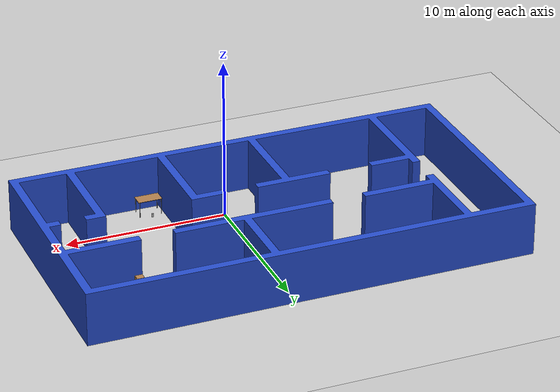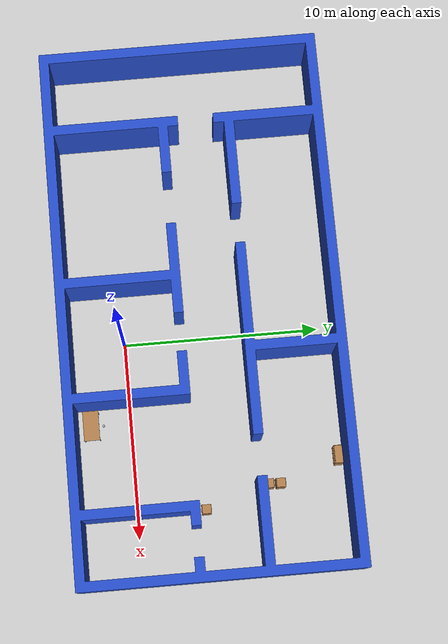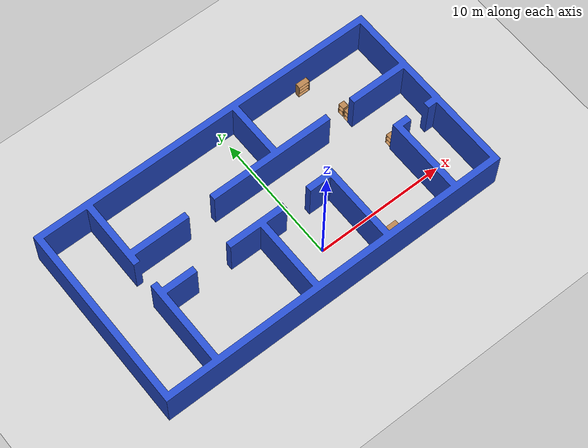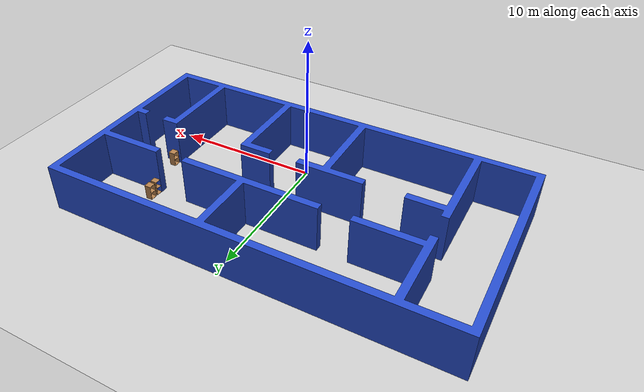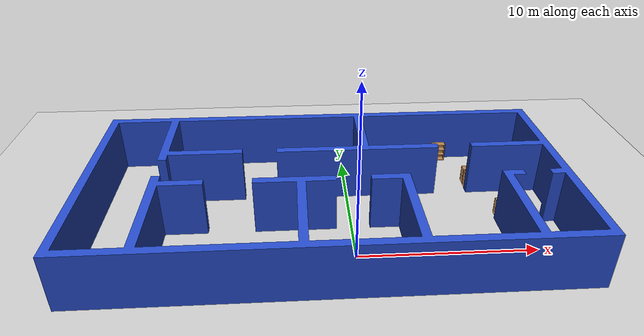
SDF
<sdf version="1.7">
 <world name="default">
  <model name="ground_plane">
   <static>1</static>
   <link name="link">
    <collision name="collision">
     <geometry><plane><normal>0 0 1</normal><size>100 100</size></plane></geometry>
     <surface>
      <contact><collide_bitmask>65535</collide_bitmask></contact>
      <friction><ode><mu>100</mu><mu2>50</mu2></ode></friction>
     </surface>
    </collision>
    <visual name="visual">
     <cast_shadows>0</cast_shadows>
     <geometry><plane><normal>0 0 1</normal><size>100 100</size></plane></geometry>
     <material>
      <script><uri>file://media/materials/scripts/gazebo.material</uri><name>Gazebo/Grey</name></script>
     </material>
    </visual>
   </link>
  </model>
  <model name="office_better">
   <static>1</static>
   <frame name="object_frame"><pose relative_to="/world">0 0 0 0 -0 0</pose></frame>
   <pose relative_to="/world">32.0924 31.9937 31.8978 0 -0 0</pose>
   <link name="link">
    <pose>-32 -32 -32 0 -0 0</pose>
    <inertial>
     <mass>239.5</mass>
     <inertia>
      <ixx>6464.83</ixx>
      <ixy>225.633</ixy>
      <ixz>0</ixz>
      <iyy>19267</iyy>
      <iyz>0</iyz>
      <izz>25283.1</izz>
     </inertia>
     <pose relative_to="link_inertia_frame">-1.35 3.89 1.68 0 -0 0</pose>
     <frame name="link_inertia_frame"><pose relative_to="link_frame">0 0 0 0 -0 0</pose></frame>
    </inertial>
    <collision name="collision">
     <max_contacts>20</max_contacts>
     <pose relative_to="collision_frame">0 0 0 0 -0 0</pose>
     <geometry>
      <mesh>
       <uri>/home/student/catkin_ws/src/JJCAR-Rescuebot/rescue_bot/worlds/./model/office_better/meshes/mesh.stl</uri>
       <scale>1 1 1</scale>
      </mesh>
     </geometry>
     <frame name="collision_frame"><pose relative_to="link_frame">0 0 0 0 -0 0</pose></frame>
    </collision>
    <visual name="visual">
     <pose relative_to="visual_frame">0 0 0 0 -0 0</pose>
     <material>
      <script><uri>file://media/materials/scripts/gazebo.material</uri><name>Gazebo/Blue</name></script>
      <shader type="vertex"><normal_map>__default__</normal_map></shader>
      <lighting>1</lighting>
      <ambient>0.15 0.75 0.35 1</ambient>
      <diffuse>0.1 0.95 0.25 1</diffuse>
      <specular>0.01 0.01 0.01 1</specular>
      <emissive>0 0 0 1</emissive>
     </material>
     <geometry>
      <mesh>
       <uri>/home/student/catkin_ws/src/JJCAR-Rescuebot/rescue_bot/worlds/./model/office_better/meshes/mesh.stl</uri>
       <scale>1 1 1</scale>
      </mesh>
     </geometry>
     <frame name="visual_frame"><pose relative_to="link_frame">0 0 0 0 -0 0</pose></frame>
    </visual>
    <frame name="link_frame"><pose relative_to="object_frame">0 0 0 0 -0 0</pose></frame>
   </link>
  </model>
  <model name="cabinet_2">
   <static>1</static>
   <link name="cabinet_bottom_plate">
    <inertial>
     <pose>0 0 -1 0 -0 0</pose>
     <inertia><ixx>2.05</ixx><ixy>0</ixy><ixz>0</ixz><iyy>2.05</iyy><iyz>0</iyz><izz>2.05</izz></inertia>
     <mass>25</mass>
    </inertial>
    <collision name="cabinet_bottom_plate_geom">
     <pose>0 0 0.01 0 -0 0</pose>
     <geometry><box><size>0.45 0.45 0.02</size></box></geometry>
    </collision>
    <visual name="cabinet_bottom_plate_geom_visual">
     <pose>0 0 0.01 0 -0 0</pose>
     <geometry><box><size>0.45 0.45 0.02</size></box></geometry>
     <material>
      <script><uri>file://media/materials/scripts/gazebo.material</uri><name>Gazebo/Wood</name></script>
     </material>
    </visual>
    <collision name="cabinet_bottom_plate_geom_cabinet_back_plate">
     <pose>0.235 0 0.51 0 -0 0</pose>
     <geometry><box><size>0.02 0.45 1.02</size></box></geometry>
    </collision>
    <visual name="cabinet_bottom_plate_geom_cabinet_back_plate_visual">
     <pose>0.235 0 0.51 0 -0 0</pose>
     <geometry><box><size>0.02 0.45 1.02</size></box></geometry>
     <material>
      <script><uri>file://media/materials/scripts/gazebo.material</uri><name>Gazebo/Wood</name></script>
     </material>
    </visual>
    <collision name="cabinet_bottom_plate_geom_cabinet_left_plate">
     <pose>0 0.235 0.51 0 -0 0</pose>
     <geometry><box><size>0.45 0.02 1.02</size></box></geometry>
    </collision>
    <visual name="cabinet_bottom_plate_geom_cabinet_left_plate_visual">
     <pose>0 0.235 0.51 0 -0 0</pose>
     <geometry><box><size>0.45 0.02 1.02</size></box></geometry>
     <material>
      <script><uri>file://media/materials/scripts/gazebo.material</uri><name>Gazebo/Wood</name></script>
     </material>
    </visual>
    <collision name="cabinet_bottom_plate_geom_cabinet_middle_plate">
     <pose>0 0 0.51 0 -0 0</pose>
     <geometry><box><size>0.45 0.45 0.02</size></box></geometry>
    </collision>
    <visual name="cabinet_bottom_plate_geom_cabinet_middle_plate_visual">
     <pose>0 0 0.51 0 -0 0</pose>
     <geometry><box><size>0.45 0.45 0.02</size></box></geometry>
     <material>
      <script><uri>file://media/materials/scripts/gazebo.material</uri><name>Gazebo/Wood</name></script>
     </material>
    </visual>
    <collision name="cabinet_bottom_plate_geom_cabinet_right_plate">
     <pose>0 -0.235 0.51 0 -0 0</pose>
     <geometry><box><size>0.45 0.02 1.02</size></box></geometry>
    </collision>
    <visual name="cabinet_bottom_plate_geom_cabinet_right_plate_visual">
     <pose>0 -0.235 0.51 0 -0 0</pose>
     <geometry><box><size>0.45 0.02 1.02</size></box></geometry>
     <material>
      <script><uri>file://media/materials/scripts/gazebo.material</uri><name>Gazebo/Wood</name></script>
     </material>
    </visual>
    <collision name="cabinet_bottom_plate_geom_cabinet_top_plate">
     <pose>0 0 1.01 0 -0 0</pose>
     <geometry><box><size>0.45 0.45 0.02</size></box></geometry>
    </collision>
    <visual name="cabinet_bottom_plate_geom_cabinet_top_plate_visual">
     <pose>0 0 1.01 0 -0 0</pose>
     <geometry><box><size>0.45 0.45 0.02</size></box></geometry>
     <material>
      <script><uri>file://media/materials/scripts/gazebo.material</uri><name>Gazebo/Wood</name></script>
     </material>
    </visual>
   </link>
   <pose>8.81846 3.4909 0 0 -0 0</pose>
  </model>
  <model name="cabinet_3">
   <static>1</static>
   <link name="cabinet_bottom_plate">
    <inertial>
     <pose>0 0 -1 0 -0 0</pose>
     <inertia><ixx>2.05</ixx><ixy>0</ixy><ixz>0</ixz><iyy>2.05</iyy><iyz>0</iyz><izz>2.05</izz></inertia>
     <mass>25</mass>
    </inertial>
    <collision name="cabinet_bottom_plate_geom">
     <pose>0 0 0.01 0 -0 0</pose>
     <geometry><box><size>0.45 0.45 0.02</size></box></geometry>
    </collision>
    <visual name="cabinet_bottom_plate_geom_visual">
     <pose>0 0 0.01 0 -0 0</pose>
     <geometry><box><size>0.45 0.45 0.02</size></box></geometry>
     <material>
      <script><uri>file://media/materials/scripts/gazebo.material</uri><name>Gazebo/Wood</name></script>
     </material>
    </visual>
    <collision name="cabinet_bottom_plate_geom_cabinet_back_plate">
     <pose>0.235 0 0.51 0 -0 0</pose>
     <geometry><box><size>0.02 0.45 1.02</size></box></geometry>
    </collision>
    <visual name="cabinet_bottom_plate_geom_cabinet_back_plate_visual">
     <pose>0.235 0 0.51 0 -0 0</pose>
     <geometry><box><size>0.02 0.45 1.02</size></box></geometry>
     <material>
      <script><uri>file://media/materials/scripts/gazebo.material</uri><name>Gazebo/Wood</name></script>
     </material>
    </visual>
    <collision name="cabinet_bottom_plate_geom_cabinet_left_plate">
     <pose>0 0.235 0.51 0 -0 0</pose>
     <geometry><box><size>0.45 0.02 1.02</size></box></geometry>
    </collision>
    <visual name="cabinet_bottom_plate_geom_cabinet_left_plate_visual">
     <pose>0 0.235 0.51 0 -0 0</pose>
     <geometry><box><size>0.45 0.02 1.02</size></box></geometry>
     <material>
      <script><uri>file://media/materials/scripts/gazebo.material</uri><name>Gazebo/Wood</name></script>
     </material>
    </visual>
    <collision name="cabinet_bottom_plate_geom_cabinet_middle_plate">
     <pose>0 0 0.51 0 -0 0</pose>
     <geometry><box><size>0.45 0.45 0.02</size></box></geometry>
    </collision>
    <visual name="cabinet_bottom_plate_geom_cabinet_middle_plate_visual">
     <pose>0 0 0.51 0 -0 0</pose>
     <geometry><box><size>0.45 0.45 0.02</size></box></geometry>
     <material>
      <script><uri>file://media/materials/scripts/gazebo.material</uri><name>Gazebo/Wood</name></script>
     </material>
    </visual>
    <collision name="cabinet_bottom_plate_geom_cabinet_right_plate">
     <pose>0 -0.235 0.51 0 -0 0</pose>
     <geometry><box><size>0.45 0.02 1.02</size></box></geometry>
    </collision>
    <visual name="cabinet_bottom_plate_geom_cabinet_right_plate_visual">
     <pose>0 -0.235 0.51 0 -0 0</pose>
     <geometry><box><size>0.45 0.02 1.02</size></box></geometry>
     <material>
      <script><uri>file://media/materials/scripts/gazebo.material</uri><name>Gazebo/Wood</name></script>
     </material>
    </visual>
    <collision name="cabinet_bottom_plate_geom_cabinet_top_plate">
     <pose>0 0 1.01 0 -0 0</pose>
     <geometry><box><size>0.45 0.45 0.02</size></box></geometry>
    </collision>
    <visual name="cabinet_bottom_plate_geom_cabinet_top_plate_visual">
     <pose>0 0 1.01 0 -0 0</pose>
     <geometry><box><size>0.45 0.45 0.02</size></box></geometry>
     <material>
      <script><uri>file://media/materials/scripts/gazebo.material</uri><name>Gazebo/Wood</name></script>
     </material>
    </visual>
   </link>
   <pose>7.79963 6.74827 0 0 -0 0</pose>
  </model>
  <model name="cabinet_4">
   <static>1</static>
   <link name="cabinet_bottom_plate">
    <inertial>
     <pose>0 0 -1 0 -0 0</pose>
     <inertia><ixx>2.05</ixx><ixy>0</ixy><ixz>0</ixz><iyy>2.05</iyy><iyz>0</iyz><izz>2.05</izz></inertia>
     <mass>25</mass>
    </inertial>
    <collision name="cabinet_bottom_plate_geom">
     <pose>0 0 0.01 0 -0 0</pose>
     <geometry><box><size>0.45 0.45 0.02</size></box></geometry>
    </collision>
    <visual name="cabinet_bottom_plate_geom_visual">
     <pose>0 0 0.01 0 -0 0</pose>
     <geometry><box><size>0.45 0.45 0.02</size></box></geometry>
     <material>
      <script><uri>file://media/materials/scripts/gazebo.material</uri><name>Gazebo/Wood</name></script>
     </material>
    </visual>
    <collision name="cabinet_bottom_plate_geom_cabinet_back_plate">
     <pose>0.235 0 0.51 0 -0 0</pose>
     <geometry><box><size>0.02 0.45 1.02</size></box></geometry>
    </collision>
    <visual name="cabinet_bottom_plate_geom_cabinet_back_plate_visual">
     <pose>0.235 0 0.51 0 -0 0</pose>
     <geometry><box><size>0.02 0.45 1.02</size></box></geometry>
     <material>
      <script><uri>file://media/materials/scripts/gazebo.material</uri><name>Gazebo/Wood</name></script>
     </material>
    </visual>
    <collision name="cabinet_bottom_plate_geom_cabinet_left_plate">
     <pose>0 0.235 0.51 0 -0 0</pose>
     <geometry><box><size>0.45 0.02 1.02</size></box></geometry>
    </collision>
    <visual name="cabinet_bottom_plate_geom_cabinet_left_plate_visual">
     <pose>0 0.235 0.51 0 -0 0</pose>
     <geometry><box><size>0.45 0.02 1.02</size></box></geometry>
     <material>
      <script><uri>file://media/materials/scripts/gazebo.material</uri><name>Gazebo/Wood</name></script>
     </material>
    </visual>
    <collision name="cabinet_bottom_plate_geom_cabinet_middle_plate">
     <pose>0 0 0.51 0 -0 0</pose>
     <geometry><box><size>0.45 0.45 0.02</size></box></geometry>
    </collision>
    <visual name="cabinet_bottom_plate_geom_cabinet_middle_plate_visual">
     <pose>0 0 0.51 0 -0 0</pose>
     <geometry><box><size>0.45 0.45 0.02</size></box></geometry>
     <material>
      <script><uri>file://media/materials/scripts/gazebo.material</uri><name>Gazebo/Wood</name></script>
     </material>
    </visual>
    <collision name="cabinet_bottom_plate_geom_cabinet_right_plate">
     <pose>0 -0.235 0.51 0 -0 0</pose>
     <geometry><box><size>0.45 0.02 1.02</size></box></geometry>
    </collision>
    <visual name="cabinet_bottom_plate_geom_cabinet_right_plate_visual">
     <pose>0 -0.235 0.51 0 -0 0</pose>
     <geometry><box><size>0.45 0.02 1.02</size></box></geometry>
     <material>
      <script><uri>file://media/materials/scripts/gazebo.material</uri><name>Gazebo/Wood</name></script>
     </material>
    </visual>
    <collision name="cabinet_bottom_plate_geom_cabinet_top_plate">
     <pose>0 0 1.01 0 -0 0</pose>
     <geometry><box><size>0.45 0.45 0.02</size></box></geometry>
    </collision>
    <visual name="cabinet_bottom_plate_geom_cabinet_top_plate_visual">
     <pose>0 0 1.01 0 -0 0</pose>
     <geometry><box><size>0.45 0.45 0.02</size></box></geometry>
     <material>
      <script><uri>file://media/materials/scripts/gazebo.material</uri><name>Gazebo/Wood</name></script>
     </material>
    </visual>
   </link>
   <pose>7.81238 7.34155 0 0 -0 0</pose>
  </model>
  <model name="bookshelf_4">
   <static>1</static>
   <link name="link">
    <inertial><mass>1</mass></inertial>
    <collision name="back">
     <pose>0 0.005 0.6 0 -0 0</pose>
     <geometry><box><size>0.9 0.01 1.2</size></box></geometry>
    </collision>
    <visual name="visual1">
     <pose>0 0.005 0.6 0 -0 0</pose>
     <geometry><box><size>0.9 0.01 1.2</size></box></geometry>
     <material>
      <script><uri>file://media/materials/scripts/gazebo.material</uri><name>Gazebo/Wood</name></script>
     </material>
    </visual>
    <collision name="left_side">
     <pose>0.45 -0.195 0.6 0 -0 0</pose>
     <geometry><box><size>0.02 0.4 1.2</size></box></geometry>
    </collision>
    <visual name="visual2">
     <pose>0.45 -0.195 0.6 0 -0 0</pose>
     <geometry><box><size>0.02 0.4 1.2</size></box></geometry>
     <material>
      <script><uri>file://media/materials/scripts/gazebo.material</uri><name>Gazebo/Wood</name></script>
     </material>
    </visual>
    <collision name="right_side">
     <pose>-0.45 -0.195 0.6 0 -0 0</pose>
     <geometry><box><size>0.02 0.4 1.2</size></box></geometry>
    </collision>
    <visual name="visual3">
     <pose>-0.45 -0.195 0.6 0 -0 0</pose>
     <geometry><box><size>0.02 0.4 1.2</size></box></geometry>
     <material>
      <script><uri>file://media/materials/scripts/gazebo.material</uri><name>Gazebo/Wood</name></script>
     </material>
    </visual>
    <collision name="bottom">
     <pose>0 -0.195 0.03 0 -0 0</pose>
     <geometry><box><size>0.88 0.4 0.06</size></box></geometry>
    </collision>
    <visual name="visual4">
     <pose>0 -0.195 0.03 0 -0 0</pose>
     <geometry><box><size>0.88 0.4 0.06</size></box></geometry>
     <material>
      <script><uri>file://media/materials/scripts/gazebo.material</uri><name>Gazebo/Wood</name></script>
     </material>
    </visual>
    <collision name="top">
     <pose>0 -0.195 1.19 0 -0 0</pose>
     <geometry><box><size>0.88 0.4 0.02</size></box></geometry>
    </collision>
    <visual name="visual5">
     <pose>0 -0.195 1.19 0 -0 0</pose>
     <geometry><box><size>0.88 0.4 0.02</size></box></geometry>
     <material>
      <script><uri>file://media/materials/scripts/gazebo.material</uri><name>Gazebo/Wood</name></script>
     </material>
    </visual>
    <collision name="low_shelf">
     <pose>0 -0.195 0.43 0 -0 0</pose>
     <geometry><box><size>0.88 0.4 0.02</size></box></geometry>
    </collision>
    <visual name="visual6">
     <pose>0 -0.195 0.43 0 -0 0</pose>
     <geometry><box><size>0.88 0.4 0.02</size></box></geometry>
     <material>
      <script><uri>file://media/materials/scripts/gazebo.material</uri><name>Gazebo/Wood</name></script>
     </material>
    </visual>
    <collision name="high_shelf">
     <pose>0 -0.195 0.8 0 -0 0</pose>
     <geometry><box><size>0.88 0.4 0.02</size></box></geometry>
    </collision>
    <visual name="visual7">
     <pose>0 -0.195 0.8 0 -0 0</pose>
     <geometry><box><size>0.88 0.4 0.02</size></box></geometry>
     <material>
      <script><uri>file://media/materials/scripts/gazebo.material</uri><name>Gazebo/Wood</name></script>
     </material>
    </visual>
   </link>
   <pose>6.65801 10.5552 0 0 -0 0</pose>
  </model>
  <model name="table">
   <static>1</static>
   <link name="link">
    <collision name="surface">
     <pose>0 0 1 0 -0 0</pose>
     <geometry><box><size>1.5 0.8 0.03</size></box></geometry>
     <surface><friction><ode><mu>0.6</mu><mu2>0.6</mu2></ode></friction></surface>
    </collision>
    <visual name="visual1">
     <pose>0 0 1 0 -0 0</pose>
     <geometry><box><size>1.5 0.8 0.03</size></box></geometry>
     <material>
      <script><uri>file://media/materials/scripts/gazebo.material</uri><name>Gazebo/Wood</name></script>
     </material>
    </visual>
    <collision name="front_left_leg">
     <pose>0.68 0.38 0.5 0 -0 0</pose>
     <geometry><cylinder><radius>0.02</radius><length>1</length></cylinder></geometry>
    </collision>
    <visual name="front_left_leg">
     <pose>0.68 0.38 0.5 0 -0 0</pose>
     <geometry><cylinder><radius>0.02</radius><length>1</length></cylinder></geometry>
     <material>
      <script><uri>file://media/materials/scripts/gazebo.material</uri><name>Gazebo/Grey</name></script>
     </material>
    </visual>
    <collision name="front_right_leg">
     <pose>0.68 -0.38 0.5 0 -0 0</pose>
     <geometry><cylinder><radius>0.02</radius><length>1</length></cylinder></geometry>
    </collision>
    <visual name="front_right_leg">
     <pose>0.68 -0.38 0.5 0 -0 0</pose>
     <geometry><cylinder><radius>0.02</radius><length>1</length></cylinder></geometry>
     <material>
      <script><uri>file://media/materials/scripts/gazebo.material</uri><name>Gazebo/Grey</name></script>
     </material>
    </visual>
    <collision name="back_right_leg">
     <pose>-0.68 -0.38 0.5 0 -0 0</pose>
     <geometry><cylinder><radius>0.02</radius><length>1</length></cylinder></geometry>
    </collision>
    <visual name="back_right_leg">
     <pose>-0.68 -0.38 0.5 0 -0 0</pose>
     <geometry><cylinder><radius>0.02</radius><length>1</length></cylinder></geometry>
     <material>
      <script><uri>file://media/materials/scripts/gazebo.material</uri><name>Gazebo/Grey</name></script>
     </material>
    </visual>
    <collision name="back_left_leg">
     <pose>-0.68 0.38 0.5 0 -0 0</pose>
     <geometry><cylinder><radius>0.02</radius><length>1</length></cylinder></geometry>
    </collision>
    <visual name="back_left_leg">
     <pose>-0.68 0.38 0.5 0 -0 0</pose>
     <geometry><cylinder><radius>0.02</radius><length>1</length></cylinder></geometry>
     <material>
      <script><uri>file://media/materials/scripts/gazebo.material</uri><name>Gazebo/Grey</name></script>
     </material>
    </visual>
   </link>
   <pose>4.14916 -1.98092 0 0 -0 0</pose>
  </model>
  <model name="beer">
   <link name="link">
    <pose>0 0 0.115 0 -0 0</pose>
    <inertial>
     <mass>0.39</mass>
     <inertia><ixx>0.00058</ixx><ixy>0</ixy><ixz>0</ixz><iyy>0.00058</iyy><iyz>0</iyz><izz>0.00019</izz></inertia>
    </inertial>
    <collision name="collision">
     <geometry><cylinder><radius>0.055</radius><length>0.23</length></cylinder></geometry>
    </collision>
    <visual name="visual">
     <geometry><cylinder><radius>0.055</radius><length>0.23</length></cylinder></geometry>
     <material>
      <script>
       <uri>model://beer/materials/scripts</uri>
       <uri>model://beer/materials/textures</uri>
       <name>Beer/Diffuse</name>
      </script>
     </material>
    </visual>
   </link>
   <pose>4.10265 -1.39104 -7e-06 0 0 -2.6e-05</pose>
  </model>
 </world>
</sdf>
